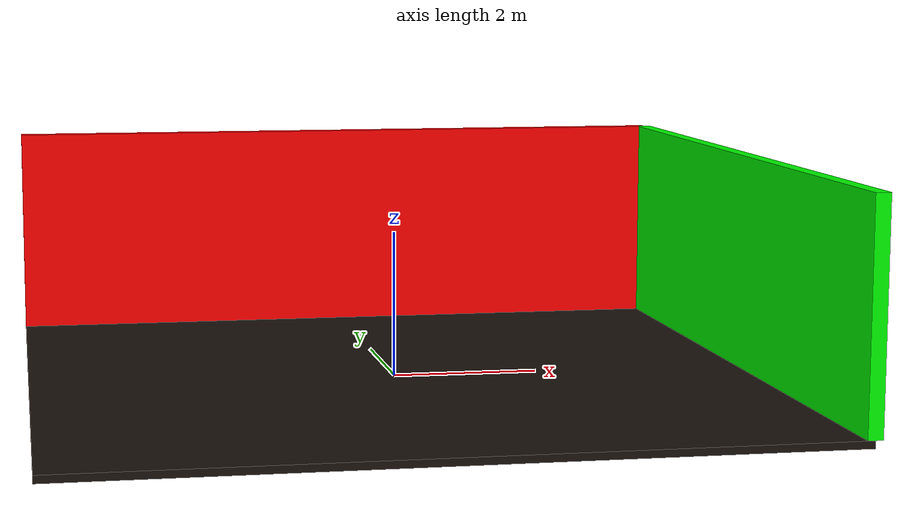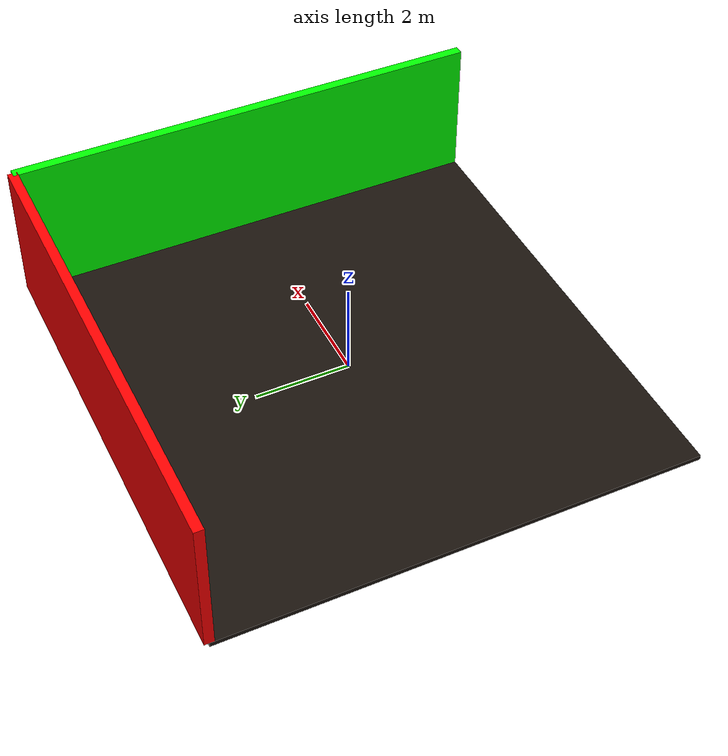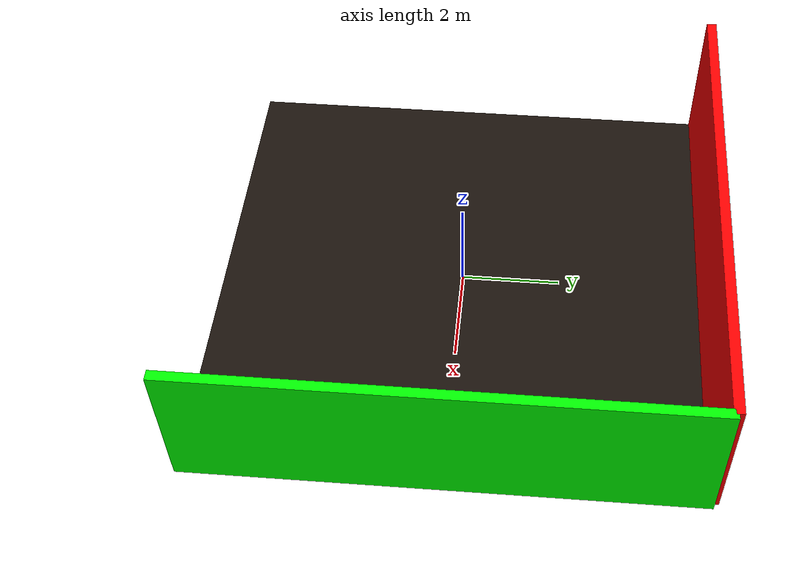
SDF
<?xml version="1.0"?>
<sdf version="1.8">
  <model name="room_geometry">
    <link name="room_geometry_body_link">
      <visual name="ground">
        <pose>0 0 -0.05 0 0 0</pose>
        <geometry>
          <box>
            <size>10 10 0.1</size>
          </box>
        </geometry>
        <material>
          <diffuse>0.1 0.07 0.05 1</diffuse>
        </material>
      </visual>
      <collision name="ground">
        <pose>0 0 -0.05 0 0 0</pose>
        <geometry>
          <box>
            <size>10 10 0.1</size>
          </box>
        </geometry>
      </collision>
    </link>

    <link name="wall_1">
      <visual name="wall_visual">
        <geometry>
          <box>
            <size>10 0.2 3</size>
          </box>
        </geometry>
        <material>
          <diffuse>1 0 0 1</diffuse>
        </material>
      </visual>
      <collision name="wall_collision">
        <geometry>
          <box>
            <size>10 0.2 3</size>
          </box>
        </geometry>
      </collision>
      <pose>0 5 1.5 0 0 0</pose>
    </link>

    <link name="wall_2">
      <visual name="wall_visual">
        <geometry>
          <box>
            <size>0.2 10 3</size>
          </box>
        </geometry>
        <material>
          <diffuse>0 1 0 1</diffuse>
        </material>
      </visual>
      <collision name="wall_collision">
        <geometry>
          <box>
            <size>0.2 10 3</size>
          </box>
        </geometry>
      </collision>
      <pose>5 0 1.5 0 0 0</pose>
    </link>
  </model>
</sdf>
